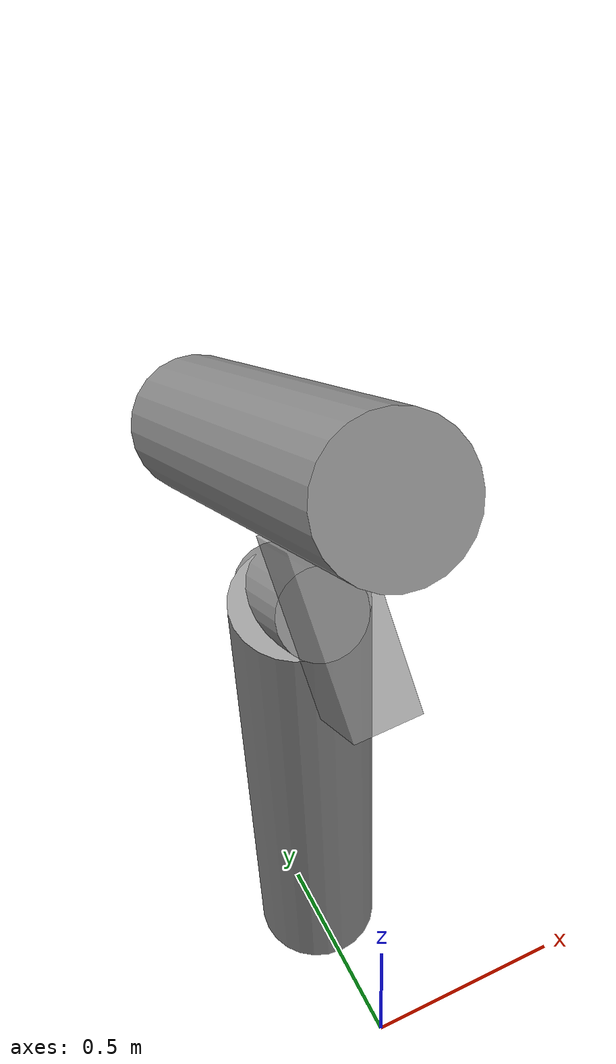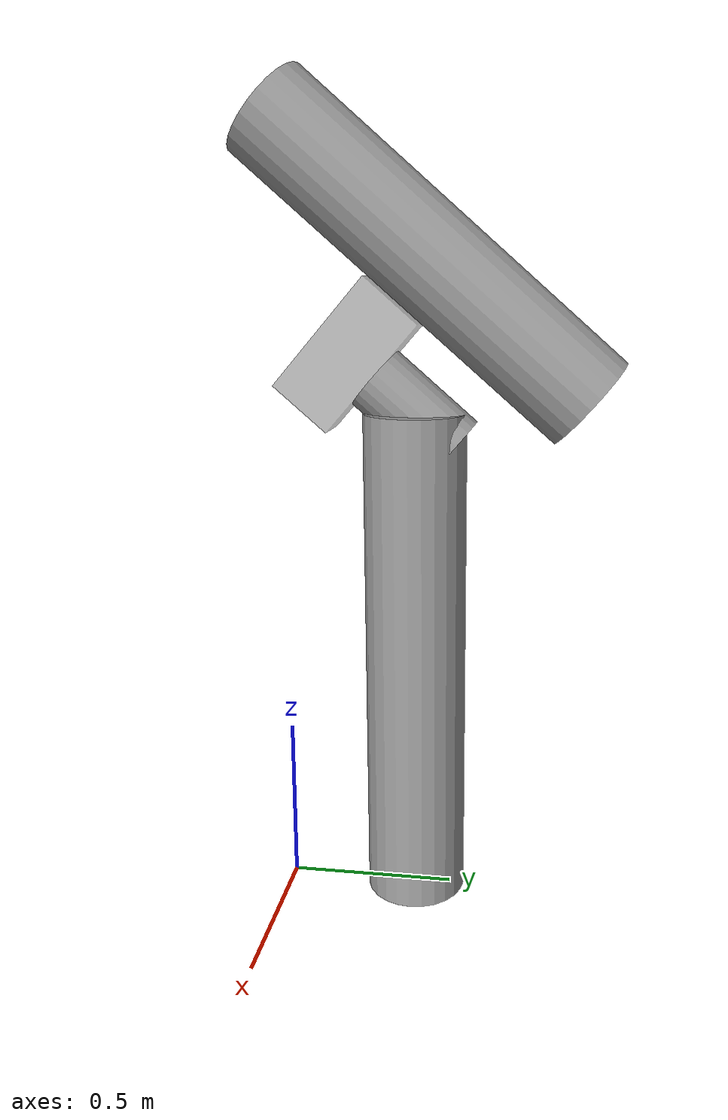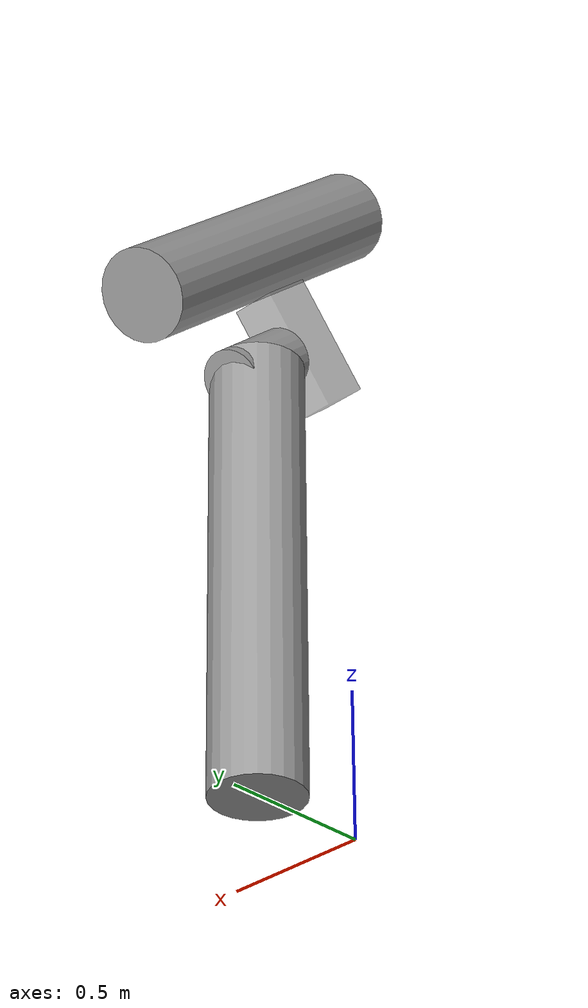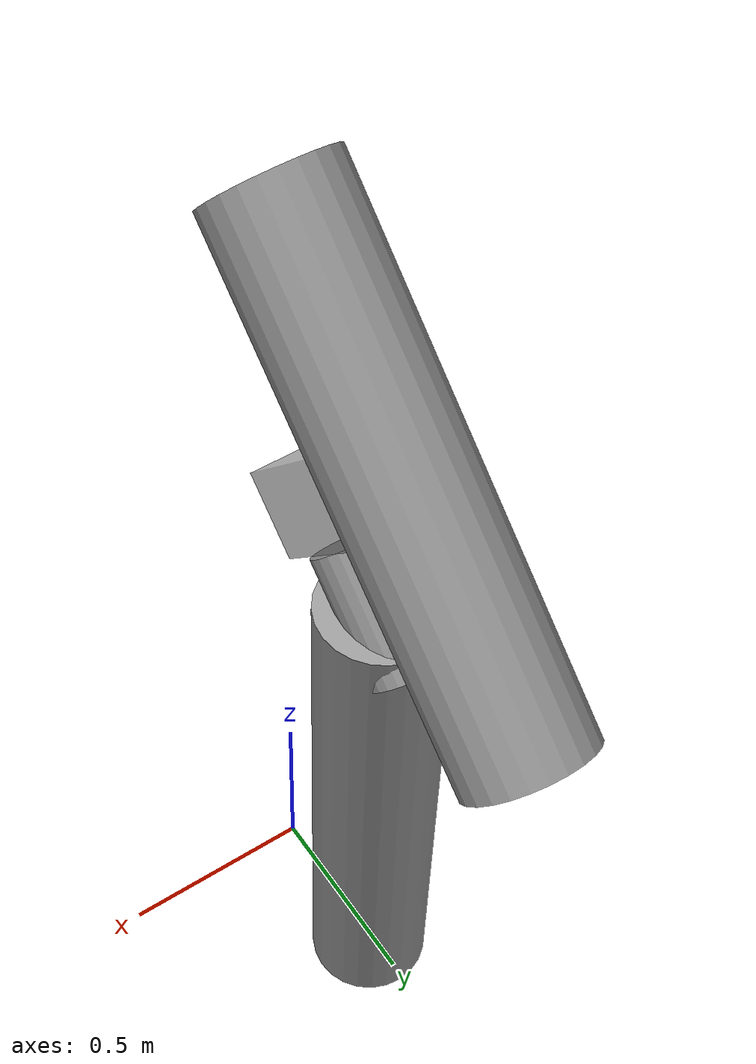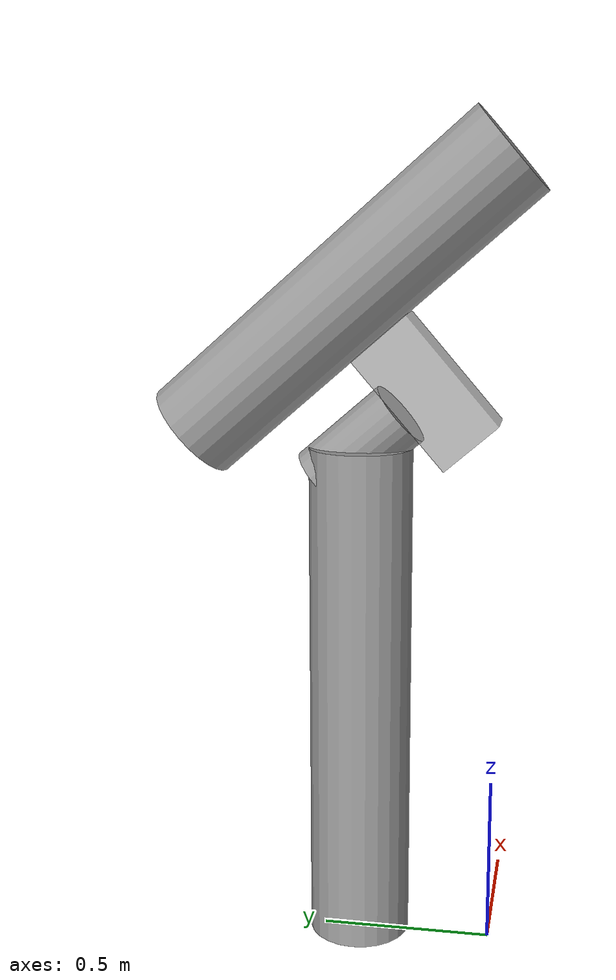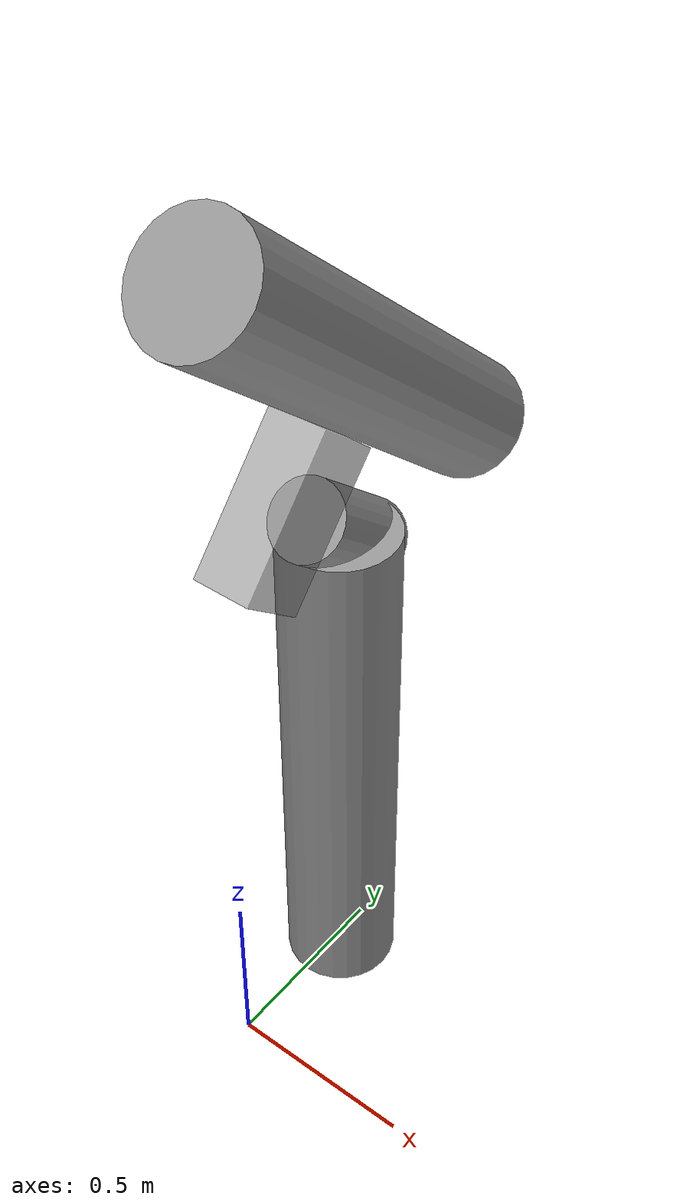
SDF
<?xml version='1.0'?>
<sdf version='1.6'>
  <model name='simple_telescope'>
    <link name='link_5'>
      <inertial>
        <mass>1000</mass>
        <inertia>
          <ixx>193.125</ixx>
          <ixy>0</ixy>
          <ixz>0</ixz>
          <iyy>193.125</iyy>
          <iyz>0</iyz>
          <izz>11.25</izz>
        </inertia>
        <pose frame=''>0 0 0 0 -0 0</pose>
      </inertial>
      <pose frame=''>0.01 0.395347 0.750776 0 -0 0</pose>
      <gravity>1</gravity>
      <self_collide>0</self_collide>
      <kinematic>0</kinematic>
      <enable_wind>0</enable_wind>
      <visual name='visual'>
        <pose frame=''>0 0 0 0 -0 0</pose>
        <geometry>
          <cylinder>
            <radius>0.15</radius>
            <length>1.5</length>
          </cylinder>
        </geometry>
        <material>
          <lighting>1</lighting>
          <script>
            <uri>file://media/materials/scripts/gazebo.material</uri>
            <name>Gazebo/Grey</name>
          </script>
          <shader type='pixel'>
            <normal_map>__default__</normal_map>
          </shader>
          <ambient>0.3 0.3 0.3 1</ambient>
          <diffuse>0.7 0.7 0.7 1</diffuse>
          <specular>0.01 0.01 0.01 1</specular>
          <emissive>0 0 0 1</emissive>
        </material>
        <transparency>0</transparency>
        <cast_shadows>1</cast_shadows>
      </visual>
      <collision name='collision'>
        <laser_retro>0</laser_retro>
        <max_contacts>10</max_contacts>
        <pose frame=''>0 0 0 0 -0 0</pose>
        <geometry>
          <cylinder>
            <radius>0.15</radius>
            <length>1.5</length>
          </cylinder>
        </geometry>
        <surface>
          <friction>
            <ode>
              <mu>1</mu>
              <mu2>1</mu2>
              <fdir1>0 0 0</fdir1>
              <slip1>0</slip1>
              <slip2>0</slip2>
            </ode>
            <torsional>
              <coefficient>1</coefficient>
              <patch_radius>0</patch_radius>
              <surface_radius>0</surface_radius>
              <use_patch_radius>1</use_patch_radius>
              <ode>
                <slip>0</slip>
              </ode>
            </torsional>
          </friction>
          <bounce>
            <restitution_coefficient>0</restitution_coefficient>
            <threshold>1e+06</threshold>
          </bounce>
          <contact>
            <collide_without_contact>1</collide_without_contact>
            <collide_without_contact_bitmask>1</collide_without_contact_bitmask>
            <collide_bitmask>1</collide_bitmask>
            <ode>
              <soft_cfm>0</soft_cfm>
              <soft_erp>0.2</soft_erp>
              <kp>1e+13</kp>
              <kd>1</kd>
              <max_vel>0.01</max_vel>
              <min_depth>0</min_depth>
            </ode>
            <bullet>
              <split_impulse>1</split_impulse>
              <split_impulse_penetration_threshold>-0.01</split_impulse_penetration_threshold>
              <soft_cfm>0</soft_cfm>
              <soft_erp>0.2</soft_erp>
              <kp>1e+13</kp>
              <kd>1</kd>
            </bullet>
          </contact>
        </surface>
      </collision>
    </link>
    <link name='link_0'>
      <inertial>
        <mass>1</mass>
        <inertia>
          <ixx>0.145833</ixx>
          <ixy>0</ixy>
          <ixz>0</ixz>
          <iyy>0.145833</iyy>
          <iyz>0</iyz>
          <izz>0.125</izz>
        </inertia>
        <pose frame=''>0 0 0 0 -0 0</pose>
      </inertial>
      <pose frame=''>0.01 0.206704 1.66483 0.855 -0 0</pose>
      <gravity>1</gravity>
      <self_collide>0</self_collide>
      <kinematic>0</kinematic>
      <enable_wind>0</enable_wind>
      <visual name='visual'>
        <pose frame=''>0 0 0 0 -0 0</pose>
        <geometry>
          <box>
            <size>0.15 0.4 0.2</size>
          </box>
        </geometry>
        <material>
          <lighting>1</lighting>
          <script>
            <uri>file://media/materials/scripts/gazebo.material</uri>
            <name>Gazebo/Grey</name>
          </script>
          <shader type='pixel'>
            <normal_map>__default__</normal_map>
          </shader>
          <ambient>0.3 0.3 0.3 1</ambient>
          <diffuse>0.7 0.7 0.7 1</diffuse>
          <specular>0.01 0.01 0.01 1</specular>
          <emissive>0 0 0 1</emissive>
        </material>
        <transparency>0.33</transparency>
        <cast_shadows>1</cast_shadows>
      </visual>
      <collision name='collision'>
        <laser_retro>0</laser_retro>
        <max_contacts>10</max_contacts>
        <pose frame=''>0 0 0 0 -0 0</pose>
        <geometry>
          <box>
            <size>0.15 0.4 0.2</size>
          </box>
        </geometry>
        <surface>
          <friction>
            <ode>
              <mu>1</mu>
              <mu2>1</mu2>
              <fdir1>0 0 0</fdir1>
              <slip1>0</slip1>
              <slip2>0</slip2>
            </ode>
            <torsional>
              <coefficient>1</coefficient>
              <patch_radius>0</patch_radius>
              <surface_radius>0</surface_radius>
              <use_patch_radius>1</use_patch_radius>
              <ode>
                <slip>0</slip>
              </ode>
            </torsional>
          </friction>
          <bounce>
            <restitution_coefficient>0</restitution_coefficient>
            <threshold>1e+06</threshold>
          </bounce>
          <contact>
            <collide_without_contact>0</collide_without_contact>
            <collide_without_contact_bitmask>1</collide_without_contact_bitmask>
            <collide_bitmask>1</collide_bitmask>
            <ode>
              <soft_cfm>0</soft_cfm>
              <soft_erp>0.2</soft_erp>
              <kp>1e+13</kp>
              <kd>1</kd>
              <max_vel>0.01</max_vel>
              <min_depth>0</min_depth>
            </ode>
            <bullet>
              <split_impulse>1</split_impulse>
              <split_impulse_penetration_threshold>-0.01</split_impulse_penetration_threshold>
              <soft_cfm>0</soft_cfm>
              <soft_erp>0.2</soft_erp>
              <kp>1e+13</kp>
              <kd>1</kd>
            </bullet>
          </contact>
        </surface>
      </collision>
    </link>
    <link name='link_1'>
      <inertial>
        <mass>15</mass>
        <inertia>
          <ixx>1.88437</ixx>
          <ixy>0</ixy>
          <ixz>0</ixz>
          <iyy>1.88437</iyy>
          <iyz>0</iyz>
          <izz>0.16875</izz>
        </inertia>
        <pose frame=''>0 0 0 0 -0 0</pose>
      </inertial>
      <pose frame=''>0.01 0.436381 1.92893 0.855 -0 0</pose>
      <gravity>1</gravity>
      <self_collide>0</self_collide>
      <kinematic>0</kinematic>
      <enable_wind>1</enable_wind>
      <visual name='visual'>
        <pose frame=''>0 0 0 0 -0 0</pose>
        <geometry>
          <cylinder>
            <radius>0.15</radius>
            <length>1.2</length>
          </cylinder>
        </geometry>
        <material>
          <lighting>1</lighting>
          <script>
            <uri>file://media/materials/scripts/gazebo.material</uri>
            <name>Gazebo/Grey</name>
          </script>
          <shader type='pixel'>
            <normal_map>__default__</normal_map>
          </shader>
          <ambient>0.3 0.3 0.3 1</ambient>
          <diffuse>0.7 0.7 0.7 1</diffuse>
          <specular>0.01 0.01 0.01 1</specular>
          <emissive>0 0 0 1</emissive>
        </material>
        <transparency>0</transparency>
        <cast_shadows>1</cast_shadows>
      </visual>
      <collision name='collision'>
        <laser_retro>0</laser_retro>
        <max_contacts>10</max_contacts>
        <pose frame=''>0 0 0 0 -0 0</pose>
        <geometry>
          <cylinder>
            <radius>0.15</radius>
            <length>1.2</length>
          </cylinder>
        </geometry>
        <surface>
          <friction>
            <ode>
              <mu>1</mu>
              <mu2>1</mu2>
              <fdir1>0 0 0</fdir1>
              <slip1>0</slip1>
              <slip2>0</slip2>
            </ode>
            <torsional>
              <coefficient>1</coefficient>
              <patch_radius>0</patch_radius>
              <surface_radius>0</surface_radius>
              <use_patch_radius>1</use_patch_radius>
              <ode>
                <slip>0</slip>
              </ode>
            </torsional>
          </friction>
          <bounce>
            <restitution_coefficient>0</restitution_coefficient>
            <threshold>1e+06</threshold>
          </bounce>
          <contact>
            <collide_without_contact>0</collide_without_contact>
            <collide_without_contact_bitmask>1</collide_without_contact_bitmask>
            <collide_bitmask>1</collide_bitmask>
            <ode>
              <soft_cfm>0</soft_cfm>
              <soft_erp>0.2</soft_erp>
              <kp>1e+13</kp>
              <kd>1</kd>
              <max_vel>0.01</max_vel>
              <min_depth>0</min_depth>
            </ode>
            <bullet>
              <split_impulse>1</split_impulse>
              <split_impulse_penetration_threshold>-0.01</split_impulse_penetration_threshold>
              <soft_cfm>0</soft_cfm>
              <soft_erp>0.2</soft_erp>
              <kp>1e+13</kp>
              <kd>1</kd>
            </bullet>
          </contact>
        </surface>
      </collision>
    </link>
    <link name='link_6'>
      <inertial>
        <mass>1</mass>
        <inertia>
          <ixx>0.145833</ixx>
          <ixy>0</ixy>
          <ixz>0</ixz>
          <iyy>0.145833</iyy>
          <iyz>0</iyz>
          <izz>0.125</izz>
        </inertia>
        <pose frame=''>0 0 0 0 -0 0</pose>
      </inertial>
      <pose frame=''>0.01 0.395347 1.50078 0.855 -0 0</pose>
      <gravity>1</gravity>
      <self_collide>0</self_collide>
      <kinematic>0</kinematic>
      <enable_wind>0</enable_wind>
      <visual name='ModelPreview_0::link_6::visual_1'>
        <pose frame=''>0 0 0 0 -0 0</pose>
        <geometry>
          <cylinder>
            <radius>0.1</radius>
            <length>0.3</length>
          </cylinder>
        </geometry>
        <material>
          <lighting>1</lighting>
          <script>
            <uri>file://media/materials/scripts/gazebo.material</uri>
            <name>Gazebo/Grey</name>
          </script>
          <shader type='pixel'>
            <normal_map>__default__</normal_map>
          </shader>
          <ambient>0.3 0.3 0.3 1</ambient>
          <diffuse>0.7 0.7 0.7 1</diffuse>
          <specular>0.01 0.01 0.01 1</specular>
          <emissive>0 0 0 1</emissive>
        </material>
        <transparency>0</transparency>
        <cast_shadows>1</cast_shadows>
      </visual>
      <collision name='collision'>
        <laser_retro>0</laser_retro>
        <max_contacts>10</max_contacts>
        <pose frame=''>0 0 0 0 -0 0</pose>
        <geometry>
          <cylinder>
            <radius>0.1</radius>
            <length>0.3</length>
          </cylinder>
        </geometry>
        <surface>
          <friction>
            <ode>
              <mu>1</mu>
              <mu2>1</mu2>
              <fdir1>0 0 0</fdir1>
              <slip1>0</slip1>
              <slip2>0</slip2>
            </ode>
            <torsional>
              <coefficient>1</coefficient>
              <patch_radius>0</patch_radius>
              <surface_radius>0</surface_radius>
              <use_patch_radius>1</use_patch_radius>
              <ode>
                <slip>0</slip>
              </ode>
            </torsional>
          </friction>
          <bounce>
            <restitution_coefficient>0</restitution_coefficient>
            <threshold>1e+06</threshold>
          </bounce>
          <contact>
            <collide_without_contact>0</collide_without_contact>
            <collide_without_contact_bitmask>1</collide_without_contact_bitmask>
            <collide_bitmask>1</collide_bitmask>
            <ode>
              <soft_cfm>0</soft_cfm>
              <soft_erp>0.2</soft_erp>
              <kp>1e+13</kp>
              <kd>1</kd>
              <max_vel>0.01</max_vel>
              <min_depth>0</min_depth>
            </ode>
            <bullet>
              <split_impulse>1</split_impulse>
              <split_impulse_penetration_threshold>-0.01</split_impulse_penetration_threshold>
              <soft_cfm>0</soft_cfm>
              <soft_erp>0.2</soft_erp>
              <kp>1e+13</kp>
              <kd>1</kd>
            </bullet>
          </contact>
        </surface>
      </collision>
    </link>
    <joint name='DEC' type='revolute'>
      <parent>link_0</parent>
      <child>link_1</child>
      <pose frame=''>0 0 0 0 -0 0</pose>
      <axis>
        <xyz>0 1 0</xyz>
        <use_parent_model_frame>0</use_parent_model_frame>
        <limit>
          <lower>-3.1415</lower>
          <upper>3.1415</upper>
          <effort>-1</effort>
          <velocity>-1</velocity>
        </limit>
        <dynamics>
          <spring_reference>0</spring_reference>
          <spring_stiffness>0</spring_stiffness>
          <damping>0</damping>
          <friction>20</friction>
        </dynamics>
      </axis>
      <physics>
        <ode>
          <limit>
            <cfm>0</cfm>
            <erp>0.2</erp>
          </limit>
          <suspension>
            <cfm>0</cfm>
            <erp>0.2</erp>
          </suspension>
        </ode>
      </physics>
    </joint>
    <joint name='RA' type='revolute'>
      <parent>link_6</parent>
      <child>link_0</child>
      <pose frame=''>0 0 0 0 -0 0</pose>
      <axis>
        <xyz>0 0 1</xyz>
        <use_parent_model_frame>0</use_parent_model_frame>
        <limit>
          <lower>-3.1415</lower>
          <upper>3.1415</upper>
          <effort>-1</effort>
          <velocity>-1</velocity>
        </limit>
        <dynamics>
          <spring_reference>0</spring_reference>
          <spring_stiffness>0</spring_stiffness>
          <damping>0</damping>
          <friction>20</friction>
        </dynamics>
      </axis>
      <physics>
        <ode>
          <limit>
            <cfm>0</cfm>
            <erp>0.2</erp>
          </limit>
          <suspension>
            <cfm>0</cfm>
            <erp>0.2</erp>
          </suspension>
        </ode>
      </physics>
    </joint>
    <joint name='pripevneni hlavy' type='fixed'>
      <parent>link_5</parent>
      <child>link_6</child>
      <pose frame=''>0 0 0 0 -0 0</pose>
      <physics>
        <ode>
          <limit>
            <cfm>0</cfm>
            <erp>0.2</erp>
          </limit>
          <suspension>
            <cfm>0</cfm>
            <erp>0.2</erp>
          </suspension>
        </ode>
      </physics>
    </joint>
    <static>1</static>
    <allow_auto_disable>0</allow_auto_disable>
  </model>
</sdf>
